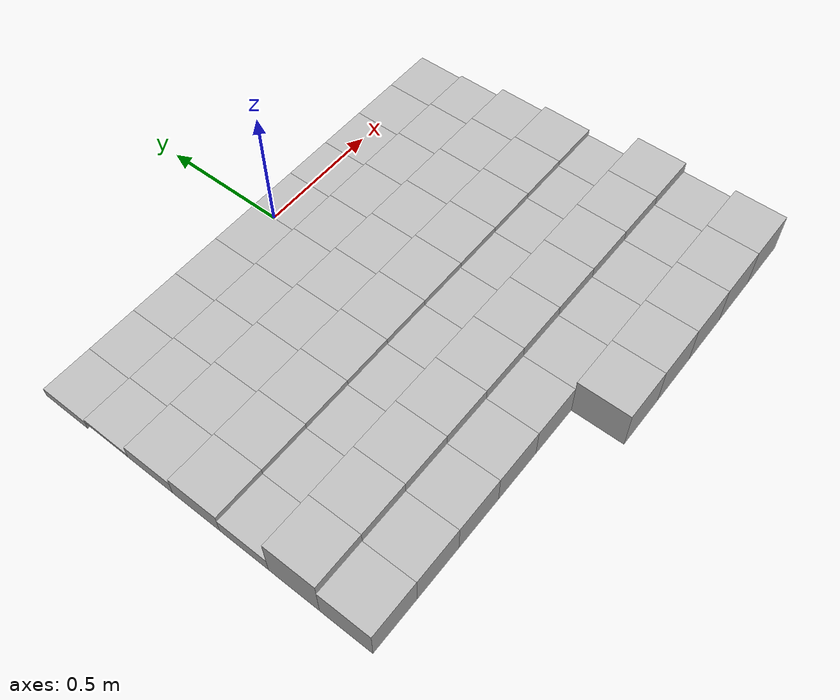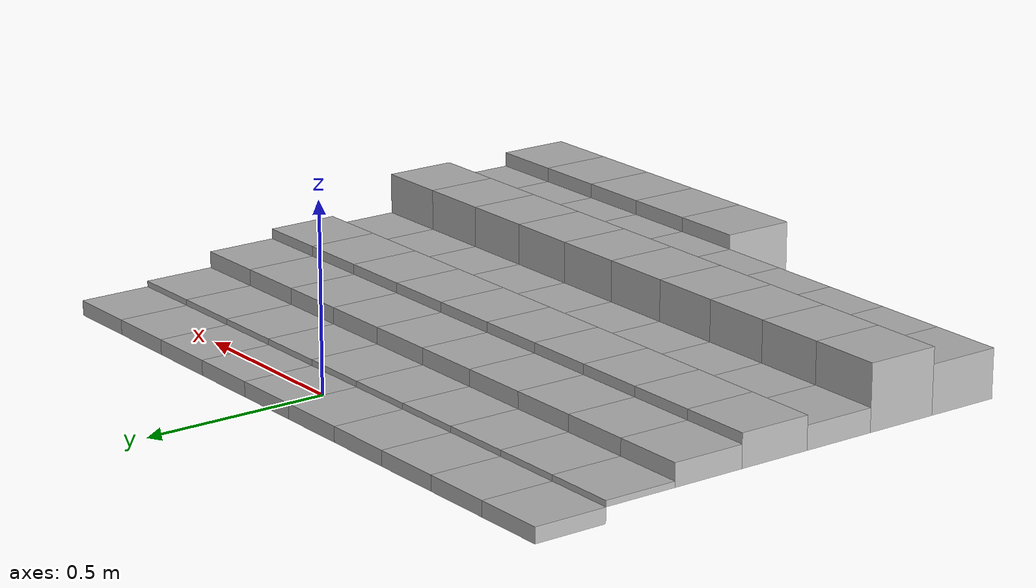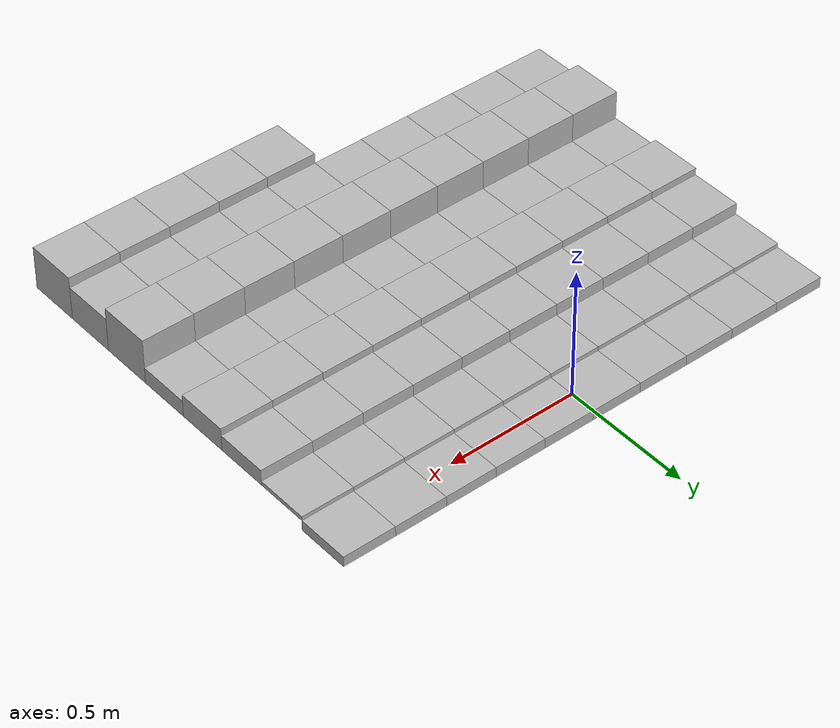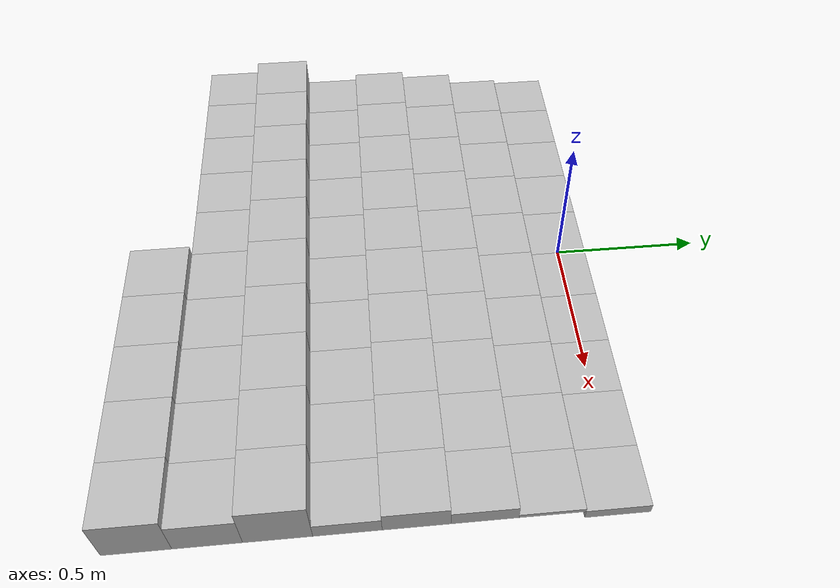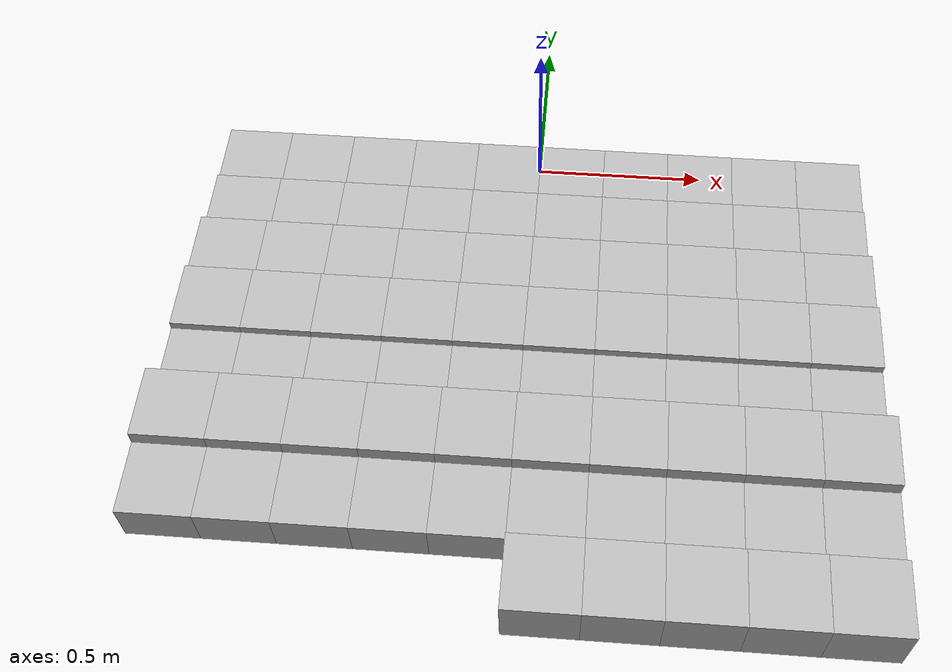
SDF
<sdf version="1.6">
 <model name="Terrain">
  <static>true</static>
  <link name="box_0_0">
   <pose>-0.9 0.0 -0.0204840245952 0 0 0</pose>
   <inertial>
    <mass>1.0</mass>
    <inertia><ixx>0.0</ixx><ixy>0.0</ixy><ixz>0.0</ixz><iyy>0.0</iyy><iyz>0.0</iyz><izz>0.0</izz></inertia>
   </inertial>
   <collision name="collision"><geometry><box><size>0.2 0.2 -0.0409680491905</size></box></geometry></collision>
   <visual name="visual"><geometry><box><size>0.2 0.2 -0.0409680491905</size></box></geometry></visual>
  </link>
  <link name="box_0_1">
   <pose>-0.7 0.0 -0.0204840245952 0 0 0</pose>
   <inertial>
    <mass>1.0</mass>
    <inertia><ixx>0.0</ixx><ixy>0.0</ixy><ixz>0.0</ixz><iyy>0.0</iyy><iyz>0.0</iyz><izz>0.0</izz></inertia>
   </inertial>
   <collision name="collision"><geometry><box><size>0.2 0.2 -0.0409680491905</size></box></geometry></collision>
   <visual name="visual"><geometry><box><size>0.2 0.2 -0.0409680491905</size></box></geometry></visual>
  </link>
  <link name="box_0_2">
   <pose>-0.5 0.0 -0.0204840245952 0 0 0</pose>
   <inertial>
    <mass>1.0</mass>
    <inertia><ixx>0.0</ixx><ixy>0.0</ixy><ixz>0.0</ixz><iyy>0.0</iyy><iyz>0.0</iyz><izz>0.0</izz></inertia>
   </inertial>
   <collision name="collision"><geometry><box><size>0.2 0.2 -0.0409680491905</size></box></geometry></collision>
   <visual name="visual"><geometry><box><size>0.2 0.2 -0.0409680491905</size></box></geometry></visual>
  </link>
  <link name="box_0_3">
   <pose>-0.3 0.0 -0.0204840245952 0 0 0</pose>
   <inertial>
    <mass>1.0</mass>
    <inertia><ixx>0.0</ixx><ixy>0.0</ixy><ixz>0.0</ixz><iyy>0.0</iyy><iyz>0.0</iyz><izz>0.0</izz></inertia>
   </inertial>
   <collision name="collision"><geometry><box><size>0.2 0.2 -0.0409680491905</size></box></geometry></collision>
   <visual name="visual"><geometry><box><size>0.2 0.2 -0.0409680491905</size></box></geometry></visual>
  </link>
  <link name="box_0_4">
   <pose>-0.1 0.0 -0.0204840245952 0 0 0</pose>
   <inertial>
    <mass>1.0</mass>
    <inertia><ixx>0.0</ixx><ixy>0.0</ixy><ixz>0.0</ixz><iyy>0.0</iyy><iyz>0.0</iyz><izz>0.0</izz></inertia>
   </inertial>
   <collision name="collision"><geometry><box><size>0.2 0.2 -0.0409680491905</size></box></geometry></collision>
   <visual name="visual"><geometry><box><size>0.2 0.2 -0.0409680491905</size></box></geometry></visual>
  </link>
  <link name="box_0_5">
   <pose>0.1 0.0 -0.0204840245952 0 0 0</pose>
   <inertial>
    <mass>1.0</mass>
    <inertia><ixx>0.0</ixx><ixy>0.0</ixy><ixz>0.0</ixz><iyy>0.0</iyy><iyz>0.0</iyz><izz>0.0</izz></inertia>
   </inertial>
   <collision name="collision"><geometry><box><size>0.2 0.2 -0.0409680491905</size></box></geometry></collision>
   <visual name="visual"><geometry><box><size>0.2 0.2 -0.0409680491905</size></box></geometry></visual>
  </link>
  <link name="box_0_6">
   <pose>0.3 0.0 -0.0204840245952 0 0 0</pose>
   <inertial>
    <mass>1.0</mass>
    <inertia><ixx>0.0</ixx><ixy>0.0</ixy><ixz>0.0</ixz><iyy>0.0</iyy><iyz>0.0</iyz><izz>0.0</izz></inertia>
   </inertial>
   <collision name="collision"><geometry><box><size>0.2 0.2 -0.0409680491905</size></box></geometry></collision>
   <visual name="visual"><geometry><box><size>0.2 0.2 -0.0409680491905</size></box></geometry></visual>
  </link>
  <link name="box_0_7">
   <pose>0.5 0.0 -0.0204840245952 0 0 0</pose>
   <inertial>
    <mass>1.0</mass>
    <inertia><ixx>0.0</ixx><ixy>0.0</ixy><ixz>0.0</ixz><iyy>0.0</iyy><iyz>0.0</iyz><izz>0.0</izz></inertia>
   </inertial>
   <collision name="collision"><geometry><box><size>0.2 0.2 -0.0409680491905</size></box></geometry></collision>
   <visual name="visual"><geometry><box><size>0.2 0.2 -0.0409680491905</size></box></geometry></visual>
  </link>
  <link name="box_0_8">
   <pose>0.7 0.0 -0.0204840245952 0 0 0</pose>
   <inertial>
    <mass>1.0</mass>
    <inertia><ixx>0.0</ixx><ixy>0.0</ixy><ixz>0.0</ixz><iyy>0.0</iyy><iyz>0.0</iyz><izz>0.0</izz></inertia>
   </inertial>
   <collision name="collision"><geometry><box><size>0.2 0.2 -0.0409680491905</size></box></geometry></collision>
   <visual name="visual"><geometry><box><size>0.2 0.2 -0.0409680491905</size></box></geometry></visual>
  </link>
  <link name="box_0_9">
   <pose>0.9 0.0 -0.0204840245952 0 0 0</pose>
   <inertial>
    <mass>1.0</mass>
    <inertia><ixx>0.0</ixx><ixy>0.0</ixy><ixz>0.0</ixz><iyy>0.0</iyy><iyz>0.0</iyz><izz>0.0</izz></inertia>
   </inertial>
   <collision name="collision"><geometry><box><size>0.2 0.2 -0.0409680491905</size></box></geometry></collision>
   <visual name="visual"><geometry><box><size>0.2 0.2 -0.0409680491905</size></box></geometry></visual>
  </link>
  <link name="box_1_0">
   <pose>-0.9 -0.2 0.00799859982303 0 0 0</pose>
   <inertial>
    <mass>1.0</mass>
    <inertia><ixx>0.0</ixx><ixy>0.0</ixy><ixz>0.0</ixz><iyy>0.0</iyy><iyz>0.0</iyz><izz>0.0</izz></inertia>
   </inertial>
   <collision name="collision"><geometry><box><size>0.2 0.2 0.0159971996461</size></box></geometry></collision>
   <visual name="visual"><geometry><box><size>0.2 0.2 0.0159971996461</size></box></geometry></visual>
  </link>
  <link name="box_1_1">
   <pose>-0.7 -0.2 0.00799859982303 0 0 0</pose>
   <inertial>
    <mass>1.0</mass>
    <inertia><ixx>0.0</ixx><ixy>0.0</ixy><ixz>0.0</ixz><iyy>0.0</iyy><iyz>0.0</iyz><izz>0.0</izz></inertia>
   </inertial>
   <collision name="collision"><geometry><box><size>0.2 0.2 0.0159971996461</size></box></geometry></collision>
   <visual name="visual"><geometry><box><size>0.2 0.2 0.0159971996461</size></box></geometry></visual>
  </link>
  <link name="box_1_2">
   <pose>-0.5 -0.2 0.00799859982303 0 0 0</pose>
   <inertial>
    <mass>1.0</mass>
    <inertia><ixx>0.0</ixx><ixy>0.0</ixy><ixz>0.0</ixz><iyy>0.0</iyy><iyz>0.0</iyz><izz>0.0</izz></inertia>
   </inertial>
   <collision name="collision"><geometry><box><size>0.2 0.2 0.0159971996461</size></box></geometry></collision>
   <visual name="visual"><geometry><box><size>0.2 0.2 0.0159971996461</size></box></geometry></visual>
  </link>
  <link name="box_1_3">
   <pose>-0.3 -0.2 0.00799859982303 0 0 0</pose>
   <inertial>
    <mass>1.0</mass>
    <inertia><ixx>0.0</ixx><ixy>0.0</ixy><ixz>0.0</ixz><iyy>0.0</iyy><iyz>0.0</iyz><izz>0.0</izz></inertia>
   </inertial>
   <collision name="collision"><geometry><box><size>0.2 0.2 0.0159971996461</size></box></geometry></collision>
   <visual name="visual"><geometry><box><size>0.2 0.2 0.0159971996461</size></box></geometry></visual>
  </link>
  <link name="box_1_4">
   <pose>-0.1 -0.2 0.00799859982303 0 0 0</pose>
   <inertial>
    <mass>1.0</mass>
    <inertia><ixx>0.0</ixx><ixy>0.0</ixy><ixz>0.0</ixz><iyy>0.0</iyy><iyz>0.0</iyz><izz>0.0</izz></inertia>
   </inertial>
   <collision name="collision"><geometry><box><size>0.2 0.2 0.0159971996461</size></box></geometry></collision>
   <visual name="visual"><geometry><box><size>0.2 0.2 0.0159971996461</size></box></geometry></visual>
  </link>
  <link name="box_1_5">
   <pose>0.1 -0.2 0.00799859982303 0 0 0</pose>
   <inertial>
    <mass>1.0</mass>
    <inertia><ixx>0.0</ixx><ixy>0.0</ixy><ixz>0.0</ixz><iyy>0.0</iyy><iyz>0.0</iyz><izz>0.0</izz></inertia>
   </inertial>
   <collision name="collision"><geometry><box><size>0.2 0.2 0.0159971996461</size></box></geometry></collision>
   <visual name="visual"><geometry><box><size>0.2 0.2 0.0159971996461</size></box></geometry></visual>
  </link>
  <link name="box_1_6">
   <pose>0.3 -0.2 0.00799859982303 0 0 0</pose>
   <inertial>
    <mass>1.0</mass>
    <inertia><ixx>0.0</ixx><ixy>0.0</ixy><ixz>0.0</ixz><iyy>0.0</iyy><iyz>0.0</iyz><izz>0.0</izz></inertia>
   </inertial>
   <collision name="collision"><geometry><box><size>0.2 0.2 0.0159971996461</size></box></geometry></collision>
   <visual name="visual"><geometry><box><size>0.2 0.2 0.0159971996461</size></box></geometry></visual>
  </link>
  <link name="box_1_7">
   <pose>0.5 -0.2 0.00799859982303 0 0 0</pose>
   <inertial>
    <mass>1.0</mass>
    <inertia><ixx>0.0</ixx><ixy>0.0</ixy><ixz>0.0</ixz><iyy>0.0</iyy><iyz>0.0</iyz><izz>0.0</izz></inertia>
   </inertial>
   <collision name="collision"><geometry><box><size>0.2 0.2 0.0159971996461</size></box></geometry></collision>
   <visual name="visual"><geometry><box><size>0.2 0.2 0.0159971996461</size></box></geometry></visual>
  </link>
  <link name="box_1_8">
   <pose>0.7 -0.2 0.00799859982303 0 0 0</pose>
   <inertial>
    <mass>1.0</mass>
    <inertia><ixx>0.0</ixx><ixy>0.0</ixy><ixz>0.0</ixz><iyy>0.0</iyy><iyz>0.0</iyz><izz>0.0</izz></inertia>
   </inertial>
   <collision name="collision"><geometry><box><size>0.2 0.2 0.0159971996461</size></box></geometry></collision>
   <visual name="visual"><geometry><box><size>0.2 0.2 0.0159971996461</size></box></geometry></visual>
  </link>
  <link name="box_1_9">
   <pose>0.9 -0.2 0.00799859982303 0 0 0</pose>
   <inertial>
    <mass>1.0</mass>
    <inertia><ixx>0.0</ixx><ixy>0.0</ixy><ixz>0.0</ixz><iyy>0.0</iyy><iyz>0.0</iyz><izz>0.0</izz></inertia>
   </inertial>
   <collision name="collision"><geometry><box><size>0.2 0.2 0.0159971996461</size></box></geometry></collision>
   <visual name="visual"><geometry><box><size>0.2 0.2 0.0159971996461</size></box></geometry></visual>
  </link>
  <link name="box_2_0">
   <pose>-0.9 -0.4 0.030659091536 0 0 0</pose>
   <inertial>
    <mass>1.0</mass>
    <inertia><ixx>0.0</ixx><ixy>0.0</ixy><ixz>0.0</ixz><iyy>0.0</iyy><iyz>0.0</iyz><izz>0.0</izz></inertia>
   </inertial>
   <collision name="collision"><geometry><box><size>0.2 0.2 0.061318183072</size></box></geometry></collision>
   <visual name="visual"><geometry><box><size>0.2 0.2 0.061318183072</size></box></geometry></visual>
  </link>
  <link name="box_2_1">
   <pose>-0.7 -0.4 0.030659091536 0 0 0</pose>
   <inertial>
    <mass>1.0</mass>
    <inertia><ixx>0.0</ixx><ixy>0.0</ixy><ixz>0.0</ixz><iyy>0.0</iyy><iyz>0.0</iyz><izz>0.0</izz></inertia>
   </inertial>
   <collision name="collision"><geometry><box><size>0.2 0.2 0.061318183072</size></box></geometry></collision>
   <visual name="visual"><geometry><box><size>0.2 0.2 0.061318183072</size></box></geometry></visual>
  </link>
  <link name="box_2_2">
   <pose>-0.5 -0.4 0.030659091536 0 0 0</pose>
   <inertial>
    <mass>1.0</mass>
    <inertia><ixx>0.0</ixx><ixy>0.0</ixy><ixz>0.0</ixz><iyy>0.0</iyy><iyz>0.0</iyz><izz>0.0</izz></inertia>
   </inertial>
   <collision name="collision"><geometry><box><size>0.2 0.2 0.061318183072</size></box></geometry></collision>
   <visual name="visual"><geometry><box><size>0.2 0.2 0.061318183072</size></box></geometry></visual>
  </link>
  <link name="box_2_3">
   <pose>-0.3 -0.4 0.030659091536 0 0 0</pose>
   <inertial>
    <mass>1.0</mass>
    <inertia><ixx>0.0</ixx><ixy>0.0</ixy><ixz>0.0</ixz><iyy>0.0</iyy><iyz>0.0</iyz><izz>0.0</izz></inertia>
   </inertial>
   <collision name="collision"><geometry><box><size>0.2 0.2 0.061318183072</size></box></geometry></collision>
   <visual name="visual"><geometry><box><size>0.2 0.2 0.061318183072</size></box></geometry></visual>
  </link>
  <link name="box_2_4">
   <pose>-0.1 -0.4 0.030659091536 0 0 0</pose>
   <inertial>
    <mass>1.0</mass>
    <inertia><ixx>0.0</ixx><ixy>0.0</ixy><ixz>0.0</ixz><iyy>0.0</iyy><iyz>0.0</iyz><izz>0.0</izz></inertia>
   </inertial>
   <collision name="collision"><geometry><box><size>0.2 0.2 0.061318183072</size></box></geometry></collision>
   <visual name="visual"><geometry><box><size>0.2 0.2 0.061318183072</size></box></geometry></visual>
  </link>
  <link name="box_2_5">
   <pose>0.1 -0.4 0.030659091536 0 0 0</pose>
   <inertial>
    <mass>1.0</mass>
    <inertia><ixx>0.0</ixx><ixy>0.0</ixy><ixz>0.0</ixz><iyy>0.0</iyy><iyz>0.0</iyz><izz>0.0</izz></inertia>
   </inertial>
   <collision name="collision"><geometry><box><size>0.2 0.2 0.061318183072</size></box></geometry></collision>
   <visual name="visual"><geometry><box><size>0.2 0.2 0.061318183072</size></box></geometry></visual>
  </link>
  <link name="box_2_6">
   <pose>0.3 -0.4 0.030659091536 0 0 0</pose>
   <inertial>
    <mass>1.0</mass>
    <inertia><ixx>0.0</ixx><ixy>0.0</ixy><ixz>0.0</ixz><iyy>0.0</iyy><iyz>0.0</iyz><izz>0.0</izz></inertia>
   </inertial>
   <collision name="collision"><geometry><box><size>0.2 0.2 0.061318183072</size></box></geometry></collision>
   <visual name="visual"><geometry><box><size>0.2 0.2 0.061318183072</size></box></geometry></visual>
  </link>
  <link name="box_2_7">
   <pose>0.5 -0.4 0.030659091536 0 0 0</pose>
   <inertial>
    <mass>1.0</mass>
    <inertia><ixx>0.0</ixx><ixy>0.0</ixy><ixz>0.0</ixz><iyy>0.0</iyy><iyz>0.0</iyz><izz>0.0</izz></inertia>
   </inertial>
   <collision name="collision"><geometry><box><size>0.2 0.2 0.061318183072</size></box></geometry></collision>
   <visual name="visual"><geometry><box><size>0.2 0.2 0.061318183072</size></box></geometry></visual>
  </link>
  <link name="box_2_8">
   <pose>0.7 -0.4 0.030659091536 0 0 0</pose>
   <inertial>
    <mass>1.0</mass>
    <inertia><ixx>0.0</ixx><ixy>0.0</ixy><ixz>0.0</ixz><iyy>0.0</iyy><iyz>0.0</iyz><izz>0.0</izz></inertia>
   </inertial>
   <collision name="collision"><geometry><box><size>0.2 0.2 0.061318183072</size></box></geometry></collision>
   <visual name="visual"><geometry><box><size>0.2 0.2 0.061318183072</size></box></geometry></visual>
  </link>
  <link name="box_2_9">
   <pose>0.9 -0.4 0.030659091536 0 0 0</pose>
   <inertial>
    <mass>1.0</mass>
    <inertia><ixx>0.0</ixx><ixy>0.0</ixy><ixz>0.0</ixz><iyy>0.0</iyy><iyz>0.0</iyz><izz>0.0</izz></inertia>
   </inertial>
   <collision name="collision"><geometry><box><size>0.2 0.2 0.061318183072</size></box></geometry></collision>
   <visual name="visual"><geometry><box><size>0.2 0.2 0.061318183072</size></box></geometry></visual>
  </link>
  <link name="box_3_0">
   <pose>-0.9 -0.6 0.0446518944585 0 0 0</pose>
   <inertial>
    <mass>1.0</mass>
    <inertia><ixx>0.0</ixx><ixy>0.0</ixy><ixz>0.0</ixz><iyy>0.0</iyy><iyz>0.0</iyz><izz>0.0</izz></inertia>
   </inertial>
   <collision name="collision"><geometry><box><size>0.2 0.2 0.0893037889171</size></box></geometry></collision>
   <visual name="visual"><geometry><box><size>0.2 0.2 0.0893037889171</size></box></geometry></visual>
  </link>
  <link name="box_3_1">
   <pose>-0.7 -0.6 0.0446518944585 0 0 0</pose>
   <inertial>
    <mass>1.0</mass>
    <inertia><ixx>0.0</ixx><ixy>0.0</ixy><ixz>0.0</ixz><iyy>0.0</iyy><iyz>0.0</iyz><izz>0.0</izz></inertia>
   </inertial>
   <collision name="collision"><geometry><box><size>0.2 0.2 0.0893037889171</size></box></geometry></collision>
   <visual name="visual"><geometry><box><size>0.2 0.2 0.0893037889171</size></box></geometry></visual>
  </link>
  <link name="box_3_2">
   <pose>-0.5 -0.6 0.0446518944585 0 0 0</pose>
   <inertial>
    <mass>1.0</mass>
    <inertia><ixx>0.0</ixx><ixy>0.0</ixy><ixz>0.0</ixz><iyy>0.0</iyy><iyz>0.0</iyz><izz>0.0</izz></inertia>
   </inertial>
   <collision name="collision"><geometry><box><size>0.2 0.2 0.0893037889171</size></box></geometry></collision>
   <visual name="visual"><geometry><box><size>0.2 0.2 0.0893037889171</size></box></geometry></visual>
  </link>
  <link name="box_3_3">
   <pose>-0.3 -0.6 0.0446518944585 0 0 0</pose>
   <inertial>
    <mass>1.0</mass>
    <inertia><ixx>0.0</ixx><ixy>0.0</ixy><ixz>0.0</ixz><iyy>0.0</iyy><iyz>0.0</iyz><izz>0.0</izz></inertia>
   </inertial>
   <collision name="collision"><geometry><box><size>0.2 0.2 0.0893037889171</size></box></geometry></collision>
   <visual name="visual"><geometry><box><size>0.2 0.2 0.0893037889171</size></box></geometry></visual>
  </link>
  <link name="box_3_4">
   <pose>-0.1 -0.6 0.0446518944585 0 0 0</pose>
   <inertial>
    <mass>1.0</mass>
    <inertia><ixx>0.0</ixx><ixy>0.0</ixy><ixz>0.0</ixz><iyy>0.0</iyy><iyz>0.0</iyz><izz>0.0</izz></inertia>
   </inertial>
   <collision name="collision"><geometry><box><size>0.2 0.2 0.0893037889171</size></box></geometry></collision>
   <visual name="visual"><geometry><box><size>0.2 0.2 0.0893037889171</size></box></geometry></visual>
  </link>
  <link name="box_3_5">
   <pose>0.1 -0.6 0.0446518944585 0 0 0</pose>
   <inertial>
    <mass>1.0</mass>
    <inertia><ixx>0.0</ixx><ixy>0.0</ixy><ixz>0.0</ixz><iyy>0.0</iyy><iyz>0.0</iyz><izz>0.0</izz></inertia>
   </inertial>
   <collision name="collision"><geometry><box><size>0.2 0.2 0.0893037889171</size></box></geometry></collision>
   <visual name="visual"><geometry><box><size>0.2 0.2 0.0893037889171</size></box></geometry></visual>
  </link>
  <link name="box_3_6">
   <pose>0.3 -0.6 0.0446518944585 0 0 0</pose>
   <inertial>
    <mass>1.0</mass>
    <inertia><ixx>0.0</ixx><ixy>0.0</ixy><ixz>0.0</ixz><iyy>0.0</iyy><iyz>0.0</iyz><izz>0.0</izz></inertia>
   </inertial>
   <collision name="collision"><geometry><box><size>0.2 0.2 0.0893037889171</size></box></geometry></collision>
   <visual name="visual"><geometry><box><size>0.2 0.2 0.0893037889171</size></box></geometry></visual>
  </link>
  <link name="box_3_7">
   <pose>0.5 -0.6 0.0446518944585 0 0 0</pose>
   <inertial>
    <mass>1.0</mass>
    <inertia><ixx>0.0</ixx><ixy>0.0</ixy><ixz>0.0</ixz><iyy>0.0</iyy><iyz>0.0</iyz><izz>0.0</izz></inertia>
   </inertial>
   <collision name="collision"><geometry><box><size>0.2 0.2 0.0893037889171</size></box></geometry></collision>
   <visual name="visual"><geometry><box><size>0.2 0.2 0.0893037889171</size></box></geometry></visual>
  </link>
  <link name="box_3_8">
   <pose>0.7 -0.6 0.0446518944585 0 0 0</pose>
   <inertial>
    <mass>1.0</mass>
    <inertia><ixx>0.0</ixx><ixy>0.0</ixy><ixz>0.0</ixz><iyy>0.0</iyy><iyz>0.0</iyz><izz>0.0</izz></inertia>
   </inertial>
   <collision name="collision"><geometry><box><size>0.2 0.2 0.0893037889171</size></box></geometry></collision>
   <visual name="visual"><geometry><box><size>0.2 0.2 0.0893037889171</size></box></geometry></visual>
  </link>
  <link name="box_3_9">
   <pose>0.9 -0.6 0.0446518944585 0 0 0</pose>
   <inertial>
    <mass>1.0</mass>
    <inertia><ixx>0.0</ixx><ixy>0.0</ixy><ixz>0.0</ixz><iyy>0.0</iyy><iyz>0.0</iyz><izz>0.0</izz></inertia>
   </inertial>
   <collision name="collision"><geometry><box><size>0.2 0.2 0.0893037889171</size></box></geometry></collision>
   <visual name="visual"><geometry><box><size>0.2 0.2 0.0893037889171</size></box></geometry></visual>
  </link>
  <link name="box_4_0">
   <pose>-0.9 -0.8 0.0318982023111 0 0 0</pose>
   <inertial>
    <mass>1.0</mass>
    <inertia><ixx>0.0</ixx><ixy>0.0</ixy><ixz>0.0</ixz><iyy>0.0</iyy><iyz>0.0</iyz><izz>0.0</izz></inertia>
   </inertial>
   <collision name="collision"><geometry><box><size>0.2 0.2 0.0637964046222</size></box></geometry></collision>
   <visual name="visual"><geometry><box><size>0.2 0.2 0.0637964046222</size></box></geometry></visual>
  </link>
  <link name="box_4_1">
   <pose>-0.7 -0.8 0.0318982023111 0 0 0</pose>
   <inertial>
    <mass>1.0</mass>
    <inertia><ixx>0.0</ixx><ixy>0.0</ixy><ixz>0.0</ixz><iyy>0.0</iyy><iyz>0.0</iyz><izz>0.0</izz></inertia>
   </inertial>
   <collision name="collision"><geometry><box><size>0.2 0.2 0.0637964046222</size></box></geometry></collision>
   <visual name="visual"><geometry><box><size>0.2 0.2 0.0637964046222</size></box></geometry></visual>
  </link>
  <link name="box_4_2">
   <pose>-0.5 -0.8 0.0318982023111 0 0 0</pose>
   <inertial>
    <mass>1.0</mass>
    <inertia><ixx>0.0</ixx><ixy>0.0</ixy><ixz>0.0</ixz><iyy>0.0</iyy><iyz>0.0</iyz><izz>0.0</izz></inertia>
   </inertial>
   <collision name="collision"><geometry><box><size>0.2 0.2 0.0637964046222</size></box></geometry></collision>
   <visual name="visual"><geometry><box><size>0.2 0.2 0.0637964046222</size></box></geometry></visual>
  </link>
  <link name="box_4_3">
   <pose>-0.3 -0.8 0.0318982023111 0 0 0</pose>
   <inertial>
    <mass>1.0</mass>
    <inertia><ixx>0.0</ixx><ixy>0.0</ixy><ixz>0.0</ixz><iyy>0.0</iyy><iyz>0.0</iyz><izz>0.0</izz></inertia>
   </inertial>
   <collision name="collision"><geometry><box><size>0.2 0.2 0.0637964046222</size></box></geometry></collision>
   <visual name="visual"><geometry><box><size>0.2 0.2 0.0637964046222</size></box></geometry></visual>
  </link>
  <link name="box_4_4">
   <pose>-0.1 -0.8 0.0318982023111 0 0 0</pose>
   <inertial>
    <mass>1.0</mass>
    <inertia><ixx>0.0</ixx><ixy>0.0</ixy><ixz>0.0</ixz><iyy>0.0</iyy><iyz>0.0</iyz><izz>0.0</izz></inertia>
   </inertial>
   <collision name="collision"><geometry><box><size>0.2 0.2 0.0637964046222</size></box></geometry></collision>
   <visual name="visual"><geometry><box><size>0.2 0.2 0.0637964046222</size></box></geometry></visual>
  </link>
  <link name="box_4_5">
   <pose>0.1 -0.8 0.0318982023111 0 0 0</pose>
   <inertial>
    <mass>1.0</mass>
    <inertia><ixx>0.0</ixx><ixy>0.0</ixy><ixz>0.0</ixz><iyy>0.0</iyy><iyz>0.0</iyz><izz>0.0</izz></inertia>
   </inertial>
   <collision name="collision"><geometry><box><size>0.2 0.2 0.0637964046222</size></box></geometry></collision>
   <visual name="visual"><geometry><box><size>0.2 0.2 0.0637964046222</size></box></geometry></visual>
  </link>
  <link name="box_4_6">
   <pose>0.3 -0.8 0.0318982023111 0 0 0</pose>
   <inertial>
    <mass>1.0</mass>
    <inertia><ixx>0.0</ixx><ixy>0.0</ixy><ixz>0.0</ixz><iyy>0.0</iyy><iyz>0.0</iyz><izz>0.0</izz></inertia>
   </inertial>
   <collision name="collision"><geometry><box><size>0.2 0.2 0.0637964046222</size></box></geometry></collision>
   <visual name="visual"><geometry><box><size>0.2 0.2 0.0637964046222</size></box></geometry></visual>
  </link>
  <link name="box_4_7">
   <pose>0.5 -0.8 0.0318982023111 0 0 0</pose>
   <inertial>
    <mass>1.0</mass>
    <inertia><ixx>0.0</ixx><ixy>0.0</ixy><ixz>0.0</ixz><iyy>0.0</iyy><iyz>0.0</iyz><izz>0.0</izz></inertia>
   </inertial>
   <collision name="collision"><geometry><box><size>0.2 0.2 0.0637964046222</size></box></geometry></collision>
   <visual name="visual"><geometry><box><size>0.2 0.2 0.0637964046222</size></box></geometry></visual>
  </link>
  <link name="box_4_8">
   <pose>0.7 -0.8 0.0318982023111 0 0 0</pose>
   <inertial>
    <mass>1.0</mass>
    <inertia><ixx>0.0</ixx><ixy>0.0</ixy><ixz>0.0</ixz><iyy>0.0</iyy><iyz>0.0</iyz><izz>0.0</izz></inertia>
   </inertial>
   <collision name="collision"><geometry><box><size>0.2 0.2 0.0637964046222</size></box></geometry></collision>
   <visual name="visual"><geometry><box><size>0.2 0.2 0.0637964046222</size></box></geometry></visual>
  </link>
  <link name="box_4_9">
   <pose>0.9 -0.8 0.0318982023111 0 0 0</pose>
   <inertial>
    <mass>1.0</mass>
    <inertia><ixx>0.0</ixx><ixy>0.0</ixy><ixz>0.0</ixz><iyy>0.0</iyy><iyz>0.0</iyz><izz>0.0</izz></inertia>
   </inertial>
   <collision name="collision"><geometry><box><size>0.2 0.2 0.0637964046222</size></box></geometry></collision>
   <visual name="visual"><geometry><box><size>0.2 0.2 0.0637964046222</size></box></geometry></visual>
  </link>
  <link name="box_5_0">
   <pose>-0.9 -1.0 0.088236267553 0 0 0</pose>
   <inertial>
    <mass>1.0</mass>
    <inertia><ixx>0.0</ixx><ixy>0.0</ixy><ixz>0.0</ixz><iyy>0.0</iyy><iyz>0.0</iyz><izz>0.0</izz></inertia>
   </inertial>
   <collision name="collision"><geometry><box><size>0.2 0.2 0.176472535106</size></box></geometry></collision>
   <visual name="visual"><geometry><box><size>0.2 0.2 0.176472535106</size></box></geometry></visual>
  </link>
  <link name="box_5_1">
   <pose>-0.7 -1.0 0.088236267553 0 0 0</pose>
   <inertial>
    <mass>1.0</mass>
    <inertia><ixx>0.0</ixx><ixy>0.0</ixy><ixz>0.0</ixz><iyy>0.0</iyy><iyz>0.0</iyz><izz>0.0</izz></inertia>
   </inertial>
   <collision name="collision"><geometry><box><size>0.2 0.2 0.176472535106</size></box></geometry></collision>
   <visual name="visual"><geometry><box><size>0.2 0.2 0.176472535106</size></box></geometry></visual>
  </link>
  <link name="box_5_2">
   <pose>-0.5 -1.0 0.088236267553 0 0 0</pose>
   <inertial>
    <mass>1.0</mass>
    <inertia><ixx>0.0</ixx><ixy>0.0</ixy><ixz>0.0</ixz><iyy>0.0</iyy><iyz>0.0</iyz><izz>0.0</izz></inertia>
   </inertial>
   <collision name="collision"><geometry><box><size>0.2 0.2 0.176472535106</size></box></geometry></collision>
   <visual name="visual"><geometry><box><size>0.2 0.2 0.176472535106</size></box></geometry></visual>
  </link>
  <link name="box_5_3">
   <pose>-0.3 -1.0 0.088236267553 0 0 0</pose>
   <inertial>
    <mass>1.0</mass>
    <inertia><ixx>0.0</ixx><ixy>0.0</ixy><ixz>0.0</ixz><iyy>0.0</iyy><iyz>0.0</iyz><izz>0.0</izz></inertia>
   </inertial>
   <collision name="collision"><geometry><box><size>0.2 0.2 0.176472535106</size></box></geometry></collision>
   <visual name="visual"><geometry><box><size>0.2 0.2 0.176472535106</size></box></geometry></visual>
  </link>
  <link name="box_5_4">
   <pose>-0.1 -1.0 0.088236267553 0 0 0</pose>
   <inertial>
    <mass>1.0</mass>
    <inertia><ixx>0.0</ixx><ixy>0.0</ixy><ixz>0.0</ixz><iyy>0.0</iyy><iyz>0.0</iyz><izz>0.0</izz></inertia>
   </inertial>
   <collision name="collision"><geometry><box><size>0.2 0.2 0.176472535106</size></box></geometry></collision>
   <visual name="visual"><geometry><box><size>0.2 0.2 0.176472535106</size></box></geometry></visual>
  </link>
  <link name="box_5_5">
   <pose>0.1 -1.0 0.088236267553 0 0 0</pose>
   <inertial>
    <mass>1.0</mass>
    <inertia><ixx>0.0</ixx><ixy>0.0</ixy><ixz>0.0</ixz><iyy>0.0</iyy><iyz>0.0</iyz><izz>0.0</izz></inertia>
   </inertial>
   <collision name="collision"><geometry><box><size>0.2 0.2 0.176472535106</size></box></geometry></collision>
   <visual name="visual"><geometry><box><size>0.2 0.2 0.176472535106</size></box></geometry></visual>
  </link>
  <link name="box_5_6">
   <pose>0.3 -1.0 0.088236267553 0 0 0</pose>
   <inertial>
    <mass>1.0</mass>
    <inertia><ixx>0.0</ixx><ixy>0.0</ixy><ixz>0.0</ixz><iyy>0.0</iyy><iyz>0.0</iyz><izz>0.0</izz></inertia>
   </inertial>
   <collision name="collision"><geometry><box><size>0.2 0.2 0.176472535106</size></box></geometry></collision>
   <visual name="visual"><geometry><box><size>0.2 0.2 0.176472535106</size></box></geometry></visual>
  </link>
  <link name="box_5_7">
   <pose>0.5 -1.0 0.088236267553 0 0 0</pose>
   <inertial>
    <mass>1.0</mass>
    <inertia><ixx>0.0</ixx><ixy>0.0</ixy><ixz>0.0</ixz><iyy>0.0</iyy><iyz>0.0</iyz><izz>0.0</izz></inertia>
   </inertial>
   <collision name="collision"><geometry><box><size>0.2 0.2 0.176472535106</size></box></geometry></collision>
   <visual name="visual"><geometry><box><size>0.2 0.2 0.176472535106</size></box></geometry></visual>
  </link>
  <link name="box_5_8">
   <pose>0.7 -1.0 0.088236267553 0 0 0</pose>
   <inertial>
    <mass>1.0</mass>
    <inertia><ixx>0.0</ixx><ixy>0.0</ixy><ixz>0.0</ixz><iyy>0.0</iyy><iyz>0.0</iyz><izz>0.0</izz></inertia>
   </inertial>
   <collision name="collision"><geometry><box><size>0.2 0.2 0.176472535106</size></box></geometry></collision>
   <visual name="visual"><geometry><box><size>0.2 0.2 0.176472535106</size></box></geometry></visual>
  </link>
  <link name="box_5_9">
   <pose>0.9 -1.0 0.088236267553 0 0 0</pose>
   <inertial>
    <mass>1.0</mass>
    <inertia><ixx>0.0</ixx><ixy>0.0</ixy><ixz>0.0</ixz><iyy>0.0</iyy><iyz>0.0</iyz><izz>0.0</izz></inertia>
   </inertial>
   <collision name="collision"><geometry><box><size>0.2 0.2 0.176472535106</size></box></geometry></collision>
   <visual name="visual"><geometry><box><size>0.2 0.2 0.176472535106</size></box></geometry></visual>
  </link>
  <link name="box_6_0">
   <pose>-0.9 -1.2 0.0659009440563 0 0 0</pose>
   <inertial>
    <mass>1.0</mass>
    <inertia><ixx>0.0</ixx><ixy>0.0</ixy><ixz>0.0</ixz><iyy>0.0</iyy><iyz>0.0</iyz><izz>0.0</izz></inertia>
   </inertial>
   <collision name="collision"><geometry><box><size>0.2 0.2 0.131801888113</size></box></geometry></collision>
   <visual name="visual"><geometry><box><size>0.2 0.2 0.131801888113</size></box></geometry></visual>
  </link>
  <link name="box_6_1">
   <pose>-0.7 -1.2 0.0659009440563 0 0 0</pose>
   <inertial>
    <mass>1.0</mass>
    <inertia><ixx>0.0</ixx><ixy>0.0</ixy><ixz>0.0</ixz><iyy>0.0</iyy><iyz>0.0</iyz><izz>0.0</izz></inertia>
   </inertial>
   <collision name="collision"><geometry><box><size>0.2 0.2 0.131801888113</size></box></geometry></collision>
   <visual name="visual"><geometry><box><size>0.2 0.2 0.131801888113</size></box></geometry></visual>
  </link>
  <link name="box_6_2">
   <pose>-0.5 -1.2 0.0659009440563 0 0 0</pose>
   <inertial>
    <mass>1.0</mass>
    <inertia><ixx>0.0</ixx><ixy>0.0</ixy><ixz>0.0</ixz><iyy>0.0</iyy><iyz>0.0</iyz><izz>0.0</izz></inertia>
   </inertial>
   <collision name="collision"><geometry><box><size>0.2 0.2 0.131801888113</size></box></geometry></collision>
   <visual name="visual"><geometry><box><size>0.2 0.2 0.131801888113</size></box></geometry></visual>
  </link>
  <link name="box_6_3">
   <pose>-0.3 -1.2 0.0659009440563 0 0 0</pose>
   <inertial>
    <mass>1.0</mass>
    <inertia><ixx>0.0</ixx><ixy>0.0</ixy><ixz>0.0</ixz><iyy>0.0</iyy><iyz>0.0</iyz><izz>0.0</izz></inertia>
   </inertial>
   <collision name="collision"><geometry><box><size>0.2 0.2 0.131801888113</size></box></geometry></collision>
   <visual name="visual"><geometry><box><size>0.2 0.2 0.131801888113</size></box></geometry></visual>
  </link>
  <link name="box_6_4">
   <pose>-0.1 -1.2 0.0659009440563 0 0 0</pose>
   <inertial>
    <mass>1.0</mass>
    <inertia><ixx>0.0</ixx><ixy>0.0</ixy><ixz>0.0</ixz><iyy>0.0</iyy><iyz>0.0</iyz><izz>0.0</izz></inertia>
   </inertial>
   <collision name="collision"><geometry><box><size>0.2 0.2 0.131801888113</size></box></geometry></collision>
   <visual name="visual"><geometry><box><size>0.2 0.2 0.131801888113</size></box></geometry></visual>
  </link>
  <link name="box_6_5">
   <pose>0.1 -1.2 0.0659009440563 0 0 0</pose>
   <inertial>
    <mass>1.0</mass>
    <inertia><ixx>0.0</ixx><ixy>0.0</ixy><ixz>0.0</ixz><iyy>0.0</iyy><iyz>0.0</iyz><izz>0.0</izz></inertia>
   </inertial>
   <collision name="collision"><geometry><box><size>0.2 0.2 0.131801888113</size></box></geometry></collision>
   <visual name="visual"><geometry><box><size>0.2 0.2 0.131801888113</size></box></geometry></visual>
  </link>
  <link name="box_6_6">
   <pose>0.3 -1.2 0.0659009440563 0 0 0</pose>
   <inertial>
    <mass>1.0</mass>
    <inertia><ixx>0.0</ixx><ixy>0.0</ixy><ixz>0.0</ixz><iyy>0.0</iyy><iyz>0.0</iyz><izz>0.0</izz></inertia>
   </inertial>
   <collision name="collision"><geometry><box><size>0.2 0.2 0.131801888113</size></box></geometry></collision>
   <visual name="visual"><geometry><box><size>0.2 0.2 0.131801888113</size></box></geometry></visual>
  </link>
  <link name="box_6_7">
   <pose>0.5 -1.2 0.0659009440563 0 0 0</pose>
   <inertial>
    <mass>1.0</mass>
    <inertia><ixx>0.0</ixx><ixy>0.0</ixy><ixz>0.0</ixz><iyy>0.0</iyy><iyz>0.0</iyz><izz>0.0</izz></inertia>
   </inertial>
   <collision name="collision"><geometry><box><size>0.2 0.2 0.131801888113</size></box></geometry></collision>
   <visual name="visual"><geometry><box><size>0.2 0.2 0.131801888113</size></box></geometry></visual>
  </link>
  <link name="box_6_8">
   <pose>0.7 -1.2 0.0659009440563 0 0 0</pose>
   <inertial>
    <mass>1.0</mass>
    <inertia><ixx>0.0</ixx><ixy>0.0</ixy><ixz>0.0</ixz><iyy>0.0</iyy><iyz>0.0</iyz><izz>0.0</izz></inertia>
   </inertial>
   <collision name="collision"><geometry><box><size>0.2 0.2 0.131801888113</size></box></geometry></collision>
   <visual name="visual"><geometry><box><size>0.2 0.2 0.131801888113</size></box></geometry></visual>
  </link>
  <link name="box_6_9">
   <pose>0.9 -1.2 0.0659009440563 0 0 0</pose>
   <inertial>
    <mass>1.0</mass>
    <inertia><ixx>0.0</ixx><ixy>0.0</ixy><ixz>0.0</ixz><iyy>0.0</iyy><iyz>0.0</iyz><izz>0.0</izz></inertia>
   </inertial>
   <collision name="collision"><geometry><box><size>0.2 0.2 0.131801888113</size></box></geometry></collision>
   <visual name="visual"><geometry><box><size>0.2 0.2 0.131801888113</size></box></geometry></visual>
  </link>
  <link name="box_7_5">
   <pose>0.1 -1.4 0.085885877857 0 0 0</pose>
   <inertial>
    <mass>1.0</mass>
    <inertia><ixx>0.0</ixx><ixy>0.0</ixy><ixz>0.0</ixz><iyy>0.0</iyy><iyz>0.0</iyz><izz>0.0</izz></inertia>
   </inertial>
   <collision name="collision"><geometry><box><size>0.2 0.2 0.171771755714</size></box></geometry></collision>
   <visual name="visual"><geometry><box><size>0.2 0.2 0.171771755714</size></box></geometry></visual>
  </link>
  <link name="box_7_6">
   <pose>0.3 -1.4 0.085885877857 0 0 0</pose>
   <inertial>
    <mass>1.0</mass>
    <inertia><ixx>0.0</ixx><ixy>0.0</ixy><ixz>0.0</ixz><iyy>0.0</iyy><iyz>0.0</iyz><izz>0.0</izz></inertia>
   </inertial>
   <collision name="collision"><geometry><box><size>0.2 0.2 0.171771755714</size></box></geometry></collision>
   <visual name="visual"><geometry><box><size>0.2 0.2 0.171771755714</size></box></geometry></visual>
  </link>
  <link name="box_7_7">
   <pose>0.5 -1.4 0.085885877857 0 0 0</pose>
   <inertial>
    <mass>1.0</mass>
    <inertia><ixx>0.0</ixx><ixy>0.0</ixy><ixz>0.0</ixz><iyy>0.0</iyy><iyz>0.0</iyz><izz>0.0</izz></inertia>
   </inertial>
   <collision name="collision"><geometry><box><size>0.2 0.2 0.171771755714</size></box></geometry></collision>
   <visual name="visual"><geometry><box><size>0.2 0.2 0.171771755714</size></box></geometry></visual>
  </link>
  <link name="box_7_8">
   <pose>0.7 -1.4 0.085885877857 0 0 0</pose>
   <inertial>
    <mass>1.0</mass>
    <inertia><ixx>0.0</ixx><ixy>0.0</ixy><ixz>0.0</ixz><iyy>0.0</iyy><iyz>0.0</iyz><izz>0.0</izz></inertia>
   </inertial>
   <collision name="collision"><geometry><box><size>0.2 0.2 0.171771755714</size></box></geometry></collision>
   <visual name="visual"><geometry><box><size>0.2 0.2 0.171771755714</size></box></geometry></visual>
  </link>
  <link name="box_7_9">
   <pose>0.9 -1.4 0.085885877857 0 0 0</pose>
   <inertial>
    <mass>1.0</mass>
    <inertia><ixx>0.0</ixx><ixy>0.0</ixy><ixz>0.0</ixz><iyy>0.0</iyy><iyz>0.0</iyz><izz>0.0</izz></inertia>
   </inertial>
   <collision name="collision"><geometry><box><size>0.2 0.2 0.171771755714</size></box></geometry></collision>
   <visual name="visual"><geometry><box><size>0.2 0.2 0.171771755714</size></box></geometry></visual>
  </link>
 </model>
</sdf>
